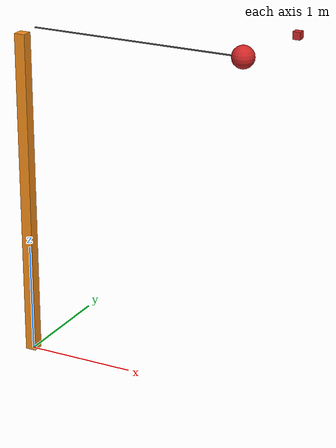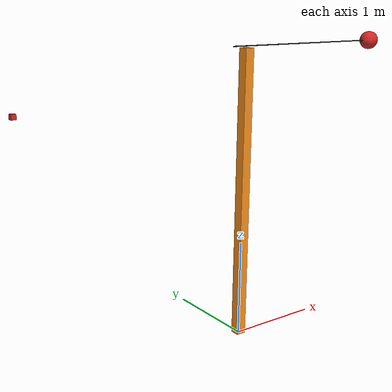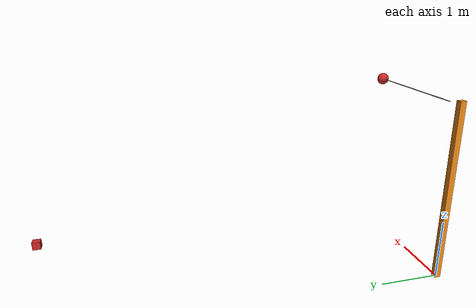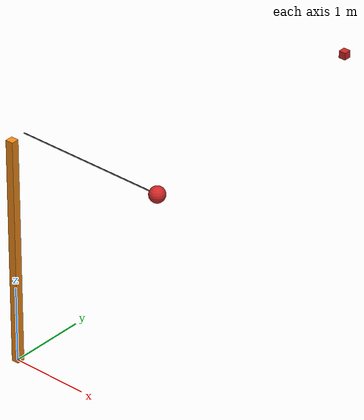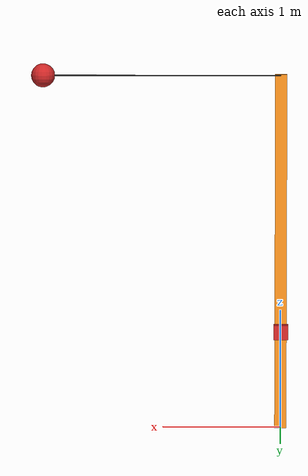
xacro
<?xml version="1.0"?>
<!-- Revolute-Revolute Manipulator -->
<robot name="rrbot" xmlns:xacro="http://www.ros.org/wiki/xacro">

  <!-- Constants for robot dimensions -->
  <xacro:property name="PI" value="3.1415926535897931"/>
  <xacro:property name="mass" value="1" /> <!-- arbitrary value for mass -->
  <xacro:property name="width" value="0.1" /> <!-- Square dimensions (widthxwidth) of beams -->
  <xacro:property name="wire_width" value="0.01" />
  <xacro:property name="height1" value="3" /> <!-- Link 1 -->
  <xacro:property name="height2" value="2" /> <!-- Link 2 -->
  <xacro:property name="link3" value="0.1" /> <!-- Size of square 'Object' box -->
  <xacro:property name="axel_offset" value="0.05" /> <!-- Space btw top of beam and the each joint -->

  <!-- Import all Gazebo-customization elements, including Gazebo colors -->
  <xacro:include filename="$(find rrbot_description)/urdf/rrbot.gazebo" />
  <!-- Import Rviz colors -->
  <xacro:include filename="$(find rrbot_description)/urdf/materials.xacro" />

  <!-- Used for fixing robot to Gazebo 'base_link' -->
  <link name="world"/>

  <joint name="fixed" type="fixed">
    <parent link="world"/>
    <child link="link1"/>
  </joint>

  <!-- Base Link -->
  <link name="link1">
    <collision>
      <origin xyz="0 0 ${height1/2}" rpy="0 0 0"/>
      <geometry>
	      <box size="${width} ${width} ${height1}"/>
      </geometry>
    </collision>

    <visual>
      <origin xyz="0 0 ${height1/2}" rpy="0 0 0"/>
      <geometry>
	      <box size="${width} ${width} ${height1}"/>
      </geometry>
      <material name="orange"/>
    </visual>

    <inertial>
      <origin xyz="0 0 ${height1/2}" rpy="0 0 0"/>
      <mass value="${mass}"/>
      <inertia
	  ixx="${mass / 12.0 * (width*width + height1*height1)}" ixy="0.0" ixz="0.0"
	  iyy="${mass / 12.0 * (height1*height1 + width*width)}" iyz="0.0"
	  izz="${mass / 12.0 * (width*width + width*width)}"/>
    </inertial>
  </link>

  <joint name="joint1" type="continuous">
    <parent link="link1"/>
    <child link="link2"/>
    <origin xyz="0 ${width+link3} ${height1}" rpy="0 0 0"/>
    <axis xyz="0 1 0"/>
    <dynamics damping="0.3"/>
  </joint>

  <!-- Top Link -->
  <link name="link2">
    <collision>
      <origin xyz="${height2/2} 0 0" rpy="0 ${-pi/2} 0"/>
      <geometry>
	      <box size="${wire_width} ${wire_width} ${height2}"/>
      </geometry>
    </collision>

 <visual>
      <origin xyz="${height2/2} 0 0" rpy="0 ${-pi/2} 0"/>
      <geometry>
	      <box size="${wire_width} ${wire_width} ${height2}"/>
      </geometry>
      <material name="black"/>
    </visual>

  </link>

  <joint name="joint2" type="fixed">
    <parent link="link2"/>
    <child link="link3"/>
    <axis xyz="0 1 0" />
    <origin xyz="${height2} 0 0" rpy="0 0 0"/>
  </joint>

  <!-- Object -->
  <link name="link3">
    <collision>
      <origin xyz="0 0 0" rpy="0 0 0"/>
      <geometry>
	      <sphere radius="${link3}"/>
      </geometry>
    </collision>

    <visual>
      <origin xyz="0 0 0" rpy="0 0 0"/>
      <geometry>
	      <sphere radius="${link3}"/>
      </geometry>
      <material name="red"/>
    </visual>

    <inertial>
      <mass value="1" />
      <origin xyz="0 0 0" rpy="0 0 0"/>
      <inertia ixx="1" ixy="0" ixz="0" iyy="1" iyz="0" izz="1" />
    </inertial>
  </link>

  <joint name="camera_joint" type="fixed">
    <axis xyz="0 1 0" />
    <origin xyz="0 6 1.5" rpy="0 0 ${-pi/2}"/>
    <parent link="world"/>
    <child link="camera_link"/>
  </joint>

  <!-- Camera -->
  <link name="camera_link">
    <collision>
      <origin xyz="0 0 0" rpy="0 0 0"/>
      <geometry>
	      <box size="0.1 0.1 0.1"/>
      </geometry>
    </collision>

    <visual>
      <origin xyz="0 0 0" rpy="0 0 0"/>
      <geometry>
	      <box size="0.1 0.1 0.1"/>
      </geometry>
      <material name="red"/>
    </visual>

    <inertial>
      <mass value="1e-5" />
      <origin xyz="0 0 0" rpy="0 0 0"/>
      <inertia ixx="1e-6" ixy="0" ixz="0" iyy="1e-6" iyz="0" izz="1e-6" />
    </inertial>
  </link>

  <!-- generate an optical frame http://www.ros.org/reps/rep-0103.html#suffix-frames
      so that ros and opencv can operate on the Object frame correctly -->
  <joint name="camera_optical_joint" type="fixed">
    <!-- these values have to be these values otherwise the gazebo camera image
        won't be aligned properly with the frame it is supposedly originating from -->
    <origin xyz="0 0 0" rpy="${-pi/2} 0 ${-pi/2}"/>
    <parent link="camera_link"/>
    <child link="camera_link_optical"/>
  </joint>

  <link name="camera_link_optical">
  </link>

</robot>
